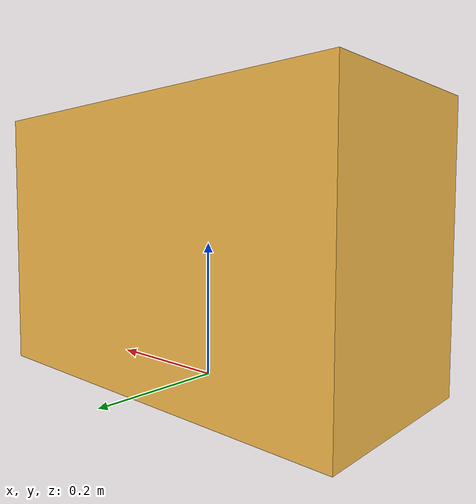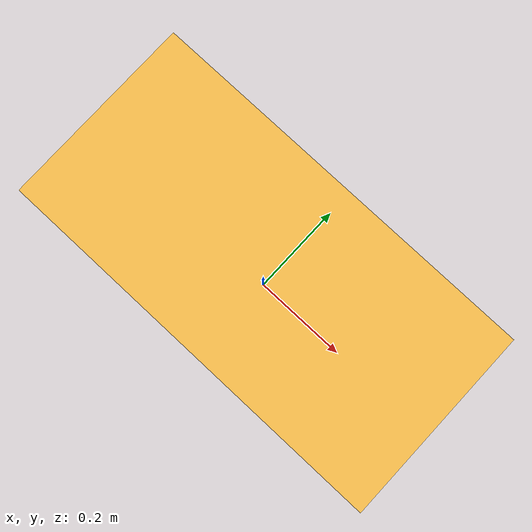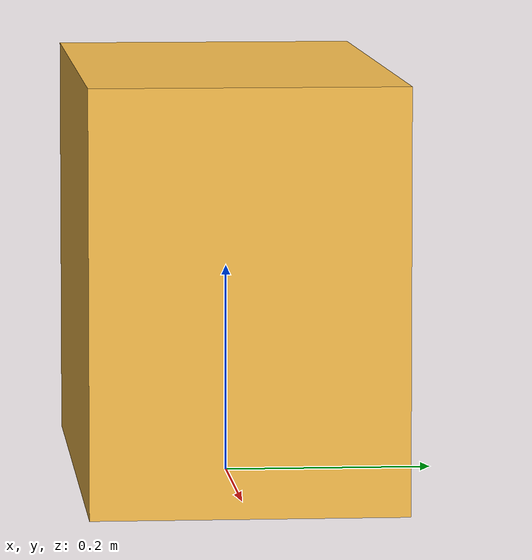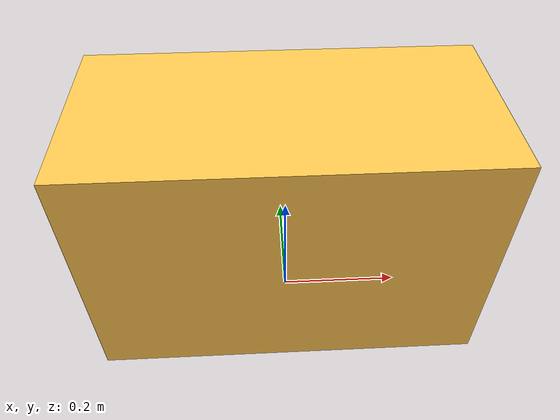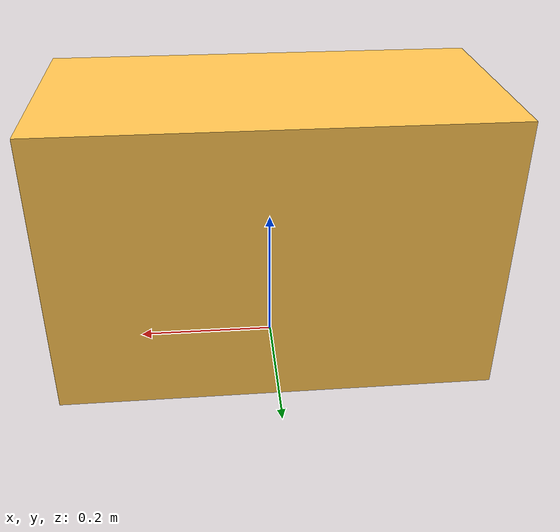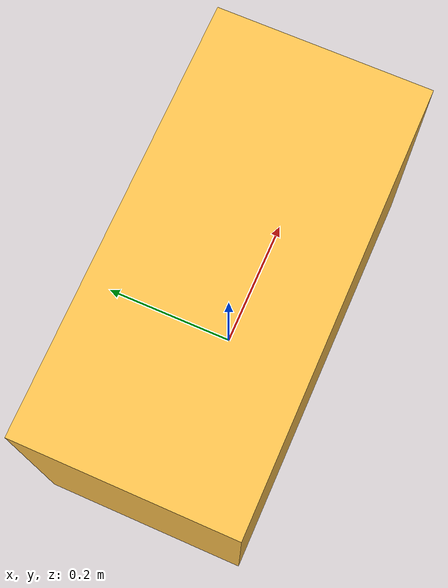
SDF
<?xml version='1.0'?>
<sdf version='1.6'>
  <model name='Box_24x15M'>
    <link name='Wall'>
	<pose frame=''>0 0 0.1985 0 -0 0</pose>
	<inertial>
	  <mass>5</mass>
	   <inertia>
	     <ixx>0.1022</ixx>
	     <iyy>0.2197</iyy>
	     <izz>0.1905</izz>
    	     <ixy>0</ixy>
	     <ixz>0</ixz>
	     <iyz>0</iyz>
	   </inertia>
	</inertial>
      <collision name='Wall_Collision'>
        <geometry>
          <box>
            <size>0.608 0.296 0.397 </size>
          </box>
        </geometry>

      </collision>
      <visual name='Wall_Visual'>

        <geometry>
          <box>
            <size>0.608 0.296 0.397</size>
          </box>
        </geometry>
       <material>
          <script>
            <uri>file://media/materials/scripts/gazebo.material</uri>
            <name>Gazebo/Grey</name>
          </script>
          <ambient>1 0.764706 0.305882 1</ambient>
        </material>
      </visual>
    </link>

    <static>1</static>
  </model>
</sdf>
